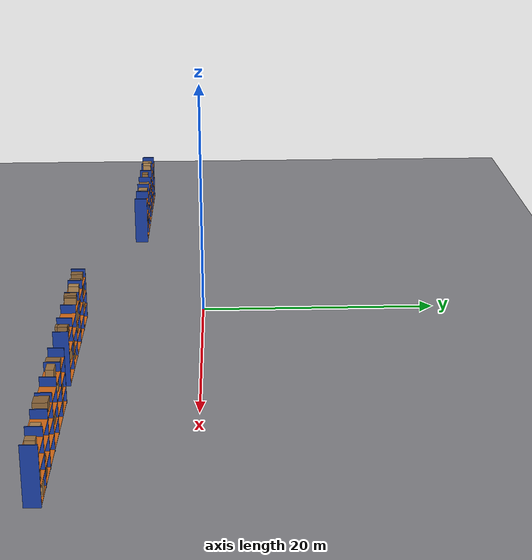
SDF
<sdf version="1.9">
 <world name="warehouse">
  <model name="ground_plane">
   <static>true</static>
   <link name="link">
    <collision name="collision">
     <geometry><plane><normal>0 0 1</normal><size>1 1</size></plane></geometry>
    </collision>
    <visual name="visual">
     <geometry><plane><normal>0 0 1</normal><size>200 100</size></plane></geometry>
     <material>
      <ambient>0.55 0.55 0.57 1</ambient>
      <diffuse>0.55 0.55 0.57 1</diffuse>
      <specular>0.1 0.1 0.1 1</specular>
     </material>
    </visual>
   </link>
  </model>
  <model name="rack6">
   <static>true</static>
   <link name="link">
    <collision name="up0_c">
     <pose>1.500 -10.500 2.250 0 0 0</pose>
     <geometry><box><size>0.080 1.200 4.500</size></box></geometry>
    </collision>
    <visual name="up0_v">
     <pose>1.500 -10.500 2.250 0 0 0</pose>
     <geometry><box><size>0.080 1.200 4.500</size></box></geometry>
     <material>
      <ambient>0.1 0.25 0.65 1</ambient>
      <diffuse>0.1 0.25 0.65 1</diffuse>
      <specular>0.1 0.1 0.1 1</specular>
     </material>
    </visual>
    <collision name="up1_c">
     <pose>4.200 -10.500 2.250 0 0 0</pose>
     <geometry><box><size>0.080 1.200 4.500</size></box></geometry>
    </collision>
    <visual name="up1_v">
     <pose>4.200 -10.500 2.250 0 0 0</pose>
     <geometry><box><size>0.080 1.200 4.500</size></box></geometry>
     <material>
      <ambient>0.1 0.25 0.65 1</ambient>
      <diffuse>0.1 0.25 0.65 1</diffuse>
      <specular>0.1 0.1 0.1 1</specular>
     </material>
    </visual>
    <collision name="up2_c">
     <pose>6.900 -10.500 2.250 0 0 0</pose>
     <geometry><box><size>0.080 1.200 4.500</size></box></geometry>
    </collision>
    <visual name="up2_v">
     <pose>6.900 -10.500 2.250 0 0 0</pose>
     <geometry><box><size>0.080 1.200 4.500</size></box></geometry>
     <material>
      <ambient>0.1 0.25 0.65 1</ambient>
      <diffuse>0.1 0.25 0.65 1</diffuse>
      <specular>0.1 0.1 0.1 1</specular>
     </material>
    </visual>
    <collision name="up3_c">
     <pose>9.600 -10.500 2.250 0 0 0</pose>
     <geometry><box><size>0.080 1.200 4.500</size></box></geometry>
    </collision>
    <visual name="up3_v">
     <pose>9.600 -10.500 2.250 0 0 0</pose>
     <geometry><box><size>0.080 1.200 4.500</size></box></geometry>
     <material>
      <ambient>0.1 0.25 0.65 1</ambient>
      <diffuse>0.1 0.25 0.65 1</diffuse>
      <specular>0.1 0.1 0.1 1</specular>
     </material>
    </visual>
    <collision name="up4_c">
     <pose>12.300 -10.500 2.250 0 0 0</pose>
     <geometry><box><size>0.080 1.200 4.500</size></box></geometry>
    </collision>
    <visual name="up4_v">
     <pose>12.300 -10.500 2.250 0 0 0</pose>
     <geometry><box><size>0.080 1.200 4.500</size></box></geometry>
     <material>
      <ambient>0.1 0.25 0.65 1</ambient>
      <diffuse>0.1 0.25 0.65 1</diffuse>
      <specular>0.1 0.1 0.1 1</specular>
     </material>
    </visual>
    <collision name="up5_c">
     <pose>15.000 -10.500 2.250 0 0 0</pose>
     <geometry><box><size>0.080 1.200 4.500</size></box></geometry>
    </collision>
    <visual name="up5_v">
     <pose>15.000 -10.500 2.250 0 0 0</pose>
     <geometry><box><size>0.080 1.200 4.500</size></box></geometry>
     <material>
      <ambient>0.1 0.25 0.65 1</ambient>
      <diffuse>0.1 0.25 0.65 1</diffuse>
      <specular>0.1 0.1 0.1 1</specular>
     </material>
    </visual>
    <collision name="sh0_c">
     <pose>8.250 -10.500 0.150 0 0 0</pose>
     <geometry><box><size>13.500 1.200 0.050</size></box></geometry>
    </collision>
    <visual name="sh0_v">
     <pose>8.250 -10.500 0.150 0 0 0</pose>
     <geometry><box><size>13.500 1.200 0.050</size></box></geometry>
     <material>
      <ambient>0.9 0.45 0.1 1</ambient>
      <diffuse>0.9 0.45 0.1 1</diffuse>
      <specular>0.1 0.1 0.1 1</specular>
     </material>
    </visual>
    <collision name="sh1_c">
     <pose>8.250 -10.500 1.350 0 0 0</pose>
     <geometry><box><size>13.500 1.200 0.050</size></box></geometry>
    </collision>
    <visual name="sh1_v">
     <pose>8.250 -10.500 1.350 0 0 0</pose>
     <geometry><box><size>13.500 1.200 0.050</size></box></geometry>
     <material>
      <ambient>0.9 0.45 0.1 1</ambient>
      <diffuse>0.9 0.45 0.1 1</diffuse>
      <specular>0.1 0.1 0.1 1</specular>
     </material>
    </visual>
    <collision name="sh2_c">
     <pose>8.250 -10.500 2.550 0 0 0</pose>
     <geometry><box><size>13.500 1.200 0.050</size></box></geometry>
    </collision>
    <visual name="sh2_v">
     <pose>8.250 -10.500 2.550 0 0 0</pose>
     <geometry><box><size>13.500 1.200 0.050</size></box></geometry>
     <material>
      <ambient>0.9 0.45 0.1 1</ambient>
      <diffuse>0.9 0.45 0.1 1</diffuse>
      <specular>0.1 0.1 0.1 1</specular>
     </material>
    </visual>
    <collision name="sh3_c">
     <pose>8.250 -10.500 3.750 0 0 0</pose>
     <geometry><box><size>13.500 1.200 0.050</size></box></geometry>
    </collision>
    <visual name="sh3_v">
     <pose>8.250 -10.500 3.750 0 0 0</pose>
     <geometry><box><size>13.500 1.200 0.050</size></box></geometry>
     <material>
      <ambient>0.9 0.45 0.1 1</ambient>
      <diffuse>0.9 0.45 0.1 1</diffuse>
      <specular>0.1 0.1 0.1 1</specular>
     </material>
    </visual>
    <collision name="c0_c">
     <pose>3.119 -10.521 0.472 0 0 0</pose>
     <geometry><box><size>0.906 0.644 0.595</size></box></geometry>
    </collision>
    <visual name="c0_v">
     <pose>3.119 -10.521 0.472 0 0 0</pose>
     <geometry><box><size>0.906 0.644 0.595</size></box></geometry>
     <material>
      <ambient>0.58 0.42 0.24 1</ambient>
      <diffuse>0.58 0.42 0.24 1</diffuse>
      <specular>0.1 0.1 0.1 1</specular>
     </material>
    </visual>
    <collision name="c1_c">
     <pose>2.631 -10.459 1.601 0 0 0</pose>
     <geometry><box><size>0.570 1.027 0.453</size></box></geometry>
    </collision>
    <visual name="c1_v">
     <pose>2.631 -10.459 1.601 0 0 0</pose>
     <geometry><box><size>0.570 1.027 0.453</size></box></geometry>
     <material>
      <ambient>0.65 0.48 0.28 1</ambient>
      <diffuse>0.65 0.48 0.28 1</diffuse>
      <specular>0.1 0.1 0.1 1</specular>
     </material>
    </visual>
    <collision name="c2_c">
     <pose>3.677 -10.496 1.761 0 0 0</pose>
     <geometry><box><size>0.600 0.729 0.772</size></box></geometry>
    </collision>
    <visual name="c2_v">
     <pose>3.677 -10.496 1.761 0 0 0</pose>
     <geometry><box><size>0.600 0.729 0.772</size></box></geometry>
     <material>
      <ambient>0.72 0.55 0.33 1</ambient>
      <diffuse>0.72 0.55 0.33 1</diffuse>
      <specular>0.1 0.1 0.1 1</specular>
     </material>
    </visual>
    <collision name="c3_c">
     <pose>2.244 -10.474 2.990 0 0 0</pose>
     <geometry><box><size>0.973 0.912 0.831</size></box></geometry>
    </collision>
    <visual name="c3_v">
     <pose>2.244 -10.474 2.990 0 0 0</pose>
     <geometry><box><size>0.973 0.912 0.831</size></box></geometry>
     <material>
      <ambient>0.58 0.42 0.24 1</ambient>
      <diffuse>0.58 0.42 0.24 1</diffuse>
      <specular>0.1 0.1 0.1 1</specular>
     </material>
    </visual>
    <collision name="c4_c">
     <pose>3.645 -10.540 4.050 0 0 0</pose>
     <geometry><box><size>0.534 0.913 0.550</size></box></geometry>
    </collision>
    <visual name="c4_v">
     <pose>3.645 -10.540 4.050 0 0 0</pose>
     <geometry><box><size>0.534 0.913 0.550</size></box></geometry>
     <material>
      <ambient>0.58 0.42 0.24 1</ambient>
      <diffuse>0.58 0.42 0.24 1</diffuse>
      <specular>0.1 0.1 0.1 1</specular>
     </material>
    </visual>
    <collision name="c5_c">
     <pose>2.171 -10.530 4.078 0 0 0</pose>
     <geometry><box><size>0.665 0.953 0.606</size></box></geometry>
    </collision>
    <visual name="c5_v">
     <pose>2.171 -10.530 4.078 0 0 0</pose>
     <geometry><box><size>0.665 0.953 0.606</size></box></geometry>
     <material>
      <ambient>0.58 0.42 0.24 1</ambient>
      <diffuse>0.58 0.42 0.24 1</diffuse>
      <specular>0.1 0.1 0.1 1</specular>
     </material>
    </visual>
    <collision name="c6_c">
     <pose>5.405 -10.522 0.412 0 0 0</pose>
     <geometry><box><size>0.820 0.904 0.474</size></box></geometry>
    </collision>
    <visual name="c6_v">
     <pose>5.405 -10.522 0.412 0 0 0</pose>
     <geometry><box><size>0.820 0.904 0.474</size></box></geometry>
     <material>
      <ambient>0.58 0.42 0.24 1</ambient>
      <diffuse>0.58 0.42 0.24 1</diffuse>
      <specular>0.1 0.1 0.1 1</specular>
     </material>
    </visual>
    <collision name="c7_c">
     <pose>5.738 -10.532 2.860 0 0 0</pose>
     <geometry><box><size>0.721 0.835 0.569</size></box></geometry>
    </collision>
    <visual name="c7_v">
     <pose>5.738 -10.532 2.860 0 0 0</pose>
     <geometry><box><size>0.721 0.835 0.569</size></box></geometry>
     <material>
      <ambient>0.58 0.42 0.24 1</ambient>
      <diffuse>0.58 0.42 0.24 1</diffuse>
      <specular>0.1 0.1 0.1 1</specular>
     </material>
    </visual>
    <collision name="c8_c">
     <pose>5.274 -10.481 2.790 0 0 0</pose>
     <geometry><box><size>0.917 0.867 0.429</size></box></geometry>
    </collision>
    <visual name="c8_v">
     <pose>5.274 -10.481 2.790 0 0 0</pose>
     <geometry><box><size>0.917 0.867 0.429</size></box></geometry>
     <material>
      <ambient>0.58 0.42 0.24 1</ambient>
      <diffuse>0.58 0.42 0.24 1</diffuse>
      <specular>0.1 0.1 0.1 1</specular>
     </material>
    </visual>
    <collision name="c9_c">
     <pose>4.876 -10.536 4.058 0 0 0</pose>
     <geometry><box><size>0.689 0.847 0.565</size></box></geometry>
    </collision>
    <visual name="c9_v">
     <pose>4.876 -10.536 4.058 0 0 0</pose>
     <geometry><box><size>0.689 0.847 0.565</size></box></geometry>
     <material>
      <ambient>0.72 0.55 0.33 1</ambient>
      <diffuse>0.72 0.55 0.33 1</diffuse>
      <specular>0.1 0.1 0.1 1</specular>
     </material>
    </visual>
    <collision name="c10_c">
     <pose>7.750 -10.493 1.632 0 0 0</pose>
     <geometry><box><size>0.838 0.942 0.513</size></box></geometry>
    </collision>
    <visual name="c10_v">
     <pose>7.750 -10.493 1.632 0 0 0</pose>
     <geometry><box><size>0.838 0.942 0.513</size></box></geometry>
     <material>
      <ambient>0.72 0.55 0.33 1</ambient>
      <diffuse>0.72 0.55 0.33 1</diffuse>
      <specular>0.1 0.1 0.1 1</specular>
     </material>
    </visual>
    <collision name="c11_c">
     <pose>7.820 -10.476 2.981 0 0 0</pose>
     <geometry><box><size>0.964 1.011 0.811</size></box></geometry>
    </collision>
    <visual name="c11_v">
     <pose>7.820 -10.476 2.981 0 0 0</pose>
     <geometry><box><size>0.964 1.011 0.811</size></box></geometry>
     <material>
      <ambient>0.72 0.55 0.33 1</ambient>
      <diffuse>0.72 0.55 0.33 1</diffuse>
      <specular>0.1 0.1 0.1 1</specular>
     </material>
    </visual>
    <collision name="c12_c">
     <pose>7.554 -10.515 4.070 0 0 0</pose>
     <geometry><box><size>0.661 0.959 0.590</size></box></geometry>
    </collision>
    <visual name="c12_v">
     <pose>7.554 -10.515 4.070 0 0 0</pose>
     <geometry><box><size>0.661 0.959 0.590</size></box></geometry>
     <material>
      <ambient>0.65 0.48 0.28 1</ambient>
      <diffuse>0.65 0.48 0.28 1</diffuse>
      <specular>0.1 0.1 0.1 1</specular>
     </material>
    </visual>
    <collision name="c13_c">
     <pose>7.401 -10.542 4.145 0 0 0</pose>
     <geometry><box><size>0.650 0.985 0.741</size></box></geometry>
    </collision>
    <visual name="c13_v">
     <pose>7.401 -10.542 4.145 0 0 0</pose>
     <geometry><box><size>0.650 0.985 0.741</size></box></geometry>
     <material>
      <ambient>0.58 0.42 0.24 1</ambient>
      <diffuse>0.58 0.42 0.24 1</diffuse>
      <specular>0.1 0.1 0.1 1</specular>
     </material>
    </visual>
    <collision name="c14_c">
     <pose>10.102 -10.536 0.387 0 0 0</pose>
     <geometry><box><size>0.690 0.735 0.425</size></box></geometry>
    </collision>
    <visual name="c14_v">
     <pose>10.102 -10.536 0.387 0 0 0</pose>
     <geometry><box><size>0.690 0.735 0.425</size></box></geometry>
     <material>
      <ambient>0.72 0.55 0.33 1</ambient>
      <diffuse>0.72 0.55 0.33 1</diffuse>
      <specular>0.1 0.1 0.1 1</specular>
     </material>
    </visual>
    <collision name="c15_c">
     <pose>10.228 -10.517 0.548 0 0 0</pose>
     <geometry><box><size>0.723 0.960 0.746</size></box></geometry>
    </collision>
    <visual name="c15_v">
     <pose>10.228 -10.517 0.548 0 0 0</pose>
     <geometry><box><size>0.723 0.960 0.746</size></box></geometry>
     <material>
      <ambient>0.65 0.48 0.28 1</ambient>
      <diffuse>0.65 0.48 0.28 1</diffuse>
      <specular>0.1 0.1 0.1 1</specular>
     </material>
    </visual>
    <collision name="c16_c">
     <pose>11.365 -10.478 1.806 0 0 0</pose>
     <geometry><box><size>1.075 0.656 0.862</size></box></geometry>
    </collision>
    <visual name="c16_v">
     <pose>11.365 -10.478 1.806 0 0 0</pose>
     <geometry><box><size>1.075 0.656 0.862</size></box></geometry>
     <material>
      <ambient>0.65 0.48 0.28 1</ambient>
      <diffuse>0.65 0.48 0.28 1</diffuse>
      <specular>0.1 0.1 0.1 1</specular>
     </material>
    </visual>
    <collision name="c17_c">
     <pose>11.243 -10.488 1.676 0 0 0</pose>
     <geometry><box><size>0.864 1.035 0.603</size></box></geometry>
    </collision>
    <visual name="c17_v">
     <pose>11.243 -10.488 1.676 0 0 0</pose>
     <geometry><box><size>0.864 1.035 0.603</size></box></geometry>
     <material>
      <ambient>0.58 0.42 0.24 1</ambient>
      <diffuse>0.58 0.42 0.24 1</diffuse>
      <specular>0.1 0.1 0.1 1</specular>
     </material>
    </visual>
    <collision name="c18_c">
     <pose>11.173 -10.495 3.000 0 0 0</pose>
     <geometry><box><size>0.821 0.797 0.849</size></box></geometry>
    </collision>
    <visual name="c18_v">
     <pose>11.173 -10.495 3.000 0 0 0</pose>
     <geometry><box><size>0.821 0.797 0.849</size></box></geometry>
     <material>
      <ambient>0.65 0.48 0.28 1</ambient>
      <diffuse>0.65 0.48 0.28 1</diffuse>
      <specular>0.1 0.1 0.1 1</specular>
     </material>
    </visual>
    <collision name="c19_c">
     <pose>11.601 -10.523 2.835 0 0 0</pose>
     <geometry><box><size>0.860 0.655 0.520</size></box></geometry>
    </collision>
    <visual name="c19_v">
     <pose>11.601 -10.523 2.835 0 0 0</pose>
     <geometry><box><size>0.860 0.655 0.520</size></box></geometry>
     <material>
      <ambient>0.65 0.48 0.28 1</ambient>
      <diffuse>0.65 0.48 0.28 1</diffuse>
      <specular>0.1 0.1 0.1 1</specular>
     </material>
    </visual>
    <collision name="c20_c">
     <pose>12.821 -10.452 1.761 0 0 0</pose>
     <geometry><box><size>0.576 0.954 0.772</size></box></geometry>
    </collision>
    <visual name="c20_v">
     <pose>12.821 -10.452 1.761 0 0 0</pose>
     <geometry><box><size>0.576 0.954 0.772</size></box></geometry>
     <material>
      <ambient>0.72 0.55 0.33 1</ambient>
      <diffuse>0.72 0.55 0.33 1</diffuse>
      <specular>0.1 0.1 0.1 1</specular>
     </material>
    </visual>
    <collision name="c21_c">
     <pose>13.959 -10.547 1.756 0 0 0</pose>
     <geometry><box><size>0.827 1.022 0.762</size></box></geometry>
    </collision>
    <visual name="c21_v">
     <pose>13.959 -10.547 1.756 0 0 0</pose>
     <geometry><box><size>0.827 1.022 0.762</size></box></geometry>
     <material>
      <ambient>0.72 0.55 0.33 1</ambient>
      <diffuse>0.72 0.55 0.33 1</diffuse>
      <specular>0.1 0.1 0.1 1</specular>
     </material>
    </visual>
    <collision name="c22_c">
     <pose>14.373 -10.528 2.810 0 0 0</pose>
     <geometry><box><size>0.593 1.057 0.471</size></box></geometry>
    </collision>
    <visual name="c22_v">
     <pose>14.373 -10.528 2.810 0 0 0</pose>
     <geometry><box><size>0.593 1.057 0.471</size></box></geometry>
     <material>
      <ambient>0.72 0.55 0.33 1</ambient>
      <diffuse>0.72 0.55 0.33 1</diffuse>
      <specular>0.1 0.1 0.1 1</specular>
     </material>
    </visual>
    <collision name="c23_c">
     <pose>13.535 -10.538 4.070 0 0 0</pose>
     <geometry><box><size>0.596 1.025 0.591</size></box></geometry>
    </collision>
    <visual name="c23_v">
     <pose>13.535 -10.538 4.070 0 0 0</pose>
     <geometry><box><size>0.596 1.025 0.591</size></box></geometry>
     <material>
      <ambient>0.58 0.42 0.24 1</ambient>
      <diffuse>0.58 0.42 0.24 1</diffuse>
      <specular>0.1 0.1 0.1 1</specular>
     </material>
    </visual>
    <collision name="c24_c">
     <pose>13.916 -10.455 4.147 0 0 0</pose>
     <geometry><box><size>0.587 0.748 0.743</size></box></geometry>
    </collision>
    <visual name="c24_v">
     <pose>13.916 -10.455 4.147 0 0 0</pose>
     <geometry><box><size>0.587 0.748 0.743</size></box></geometry>
     <material>
      <ambient>0.58 0.42 0.24 1</ambient>
      <diffuse>0.58 0.42 0.24 1</diffuse>
      <specular>0.1 0.1 0.1 1</specular>
     </material>
    </visual>
   </link>
  </model>
  <model name="rack7">
   <static>true</static>
   <link name="link">
    <collision name="up0_c">
     <pose>18.000 -10.500 2.250 0 0 0</pose>
     <geometry><box><size>0.080 1.200 4.500</size></box></geometry>
    </collision>
    <visual name="up0_v">
     <pose>18.000 -10.500 2.250 0 0 0</pose>
     <geometry><box><size>0.080 1.200 4.500</size></box></geometry>
     <material>
      <ambient>0.1 0.25 0.65 1</ambient>
      <diffuse>0.1 0.25 0.65 1</diffuse>
      <specular>0.1 0.1 0.1 1</specular>
     </material>
    </visual>
    <collision name="up1_c">
     <pose>20.500 -10.500 2.250 0 0 0</pose>
     <geometry><box><size>0.080 1.200 4.500</size></box></geometry>
    </collision>
    <visual name="up1_v">
     <pose>20.500 -10.500 2.250 0 0 0</pose>
     <geometry><box><size>0.080 1.200 4.500</size></box></geometry>
     <material>
      <ambient>0.1 0.25 0.65 1</ambient>
      <diffuse>0.1 0.25 0.65 1</diffuse>
      <specular>0.1 0.1 0.1 1</specular>
     </material>
    </visual>
    <collision name="up2_c">
     <pose>23.000 -10.500 2.250 0 0 0</pose>
     <geometry><box><size>0.080 1.200 4.500</size></box></geometry>
    </collision>
    <visual name="up2_v">
     <pose>23.000 -10.500 2.250 0 0 0</pose>
     <geometry><box><size>0.080 1.200 4.500</size></box></geometry>
     <material>
      <ambient>0.1 0.25 0.65 1</ambient>
      <diffuse>0.1 0.25 0.65 1</diffuse>
      <specular>0.1 0.1 0.1 1</specular>
     </material>
    </visual>
    <collision name="up3_c">
     <pose>25.500 -10.500 2.250 0 0 0</pose>
     <geometry><box><size>0.080 1.200 4.500</size></box></geometry>
    </collision>
    <visual name="up3_v">
     <pose>25.500 -10.500 2.250 0 0 0</pose>
     <geometry><box><size>0.080 1.200 4.500</size></box></geometry>
     <material>
      <ambient>0.1 0.25 0.65 1</ambient>
      <diffuse>0.1 0.25 0.65 1</diffuse>
      <specular>0.1 0.1 0.1 1</specular>
     </material>
    </visual>
    <collision name="up4_c">
     <pose>28.000 -10.500 2.250 0 0 0</pose>
     <geometry><box><size>0.080 1.200 4.500</size></box></geometry>
    </collision>
    <visual name="up4_v">
     <pose>28.000 -10.500 2.250 0 0 0</pose>
     <geometry><box><size>0.080 1.200 4.500</size></box></geometry>
     <material>
      <ambient>0.1 0.25 0.65 1</ambient>
      <diffuse>0.1 0.25 0.65 1</diffuse>
      <specular>0.1 0.1 0.1 1</specular>
     </material>
    </visual>
    <collision name="up5_c">
     <pose>30.500 -10.500 2.250 0 0 0</pose>
     <geometry><box><size>0.080 1.200 4.500</size></box></geometry>
    </collision>
    <visual name="up5_v">
     <pose>30.500 -10.500 2.250 0 0 0</pose>
     <geometry><box><size>0.080 1.200 4.500</size></box></geometry>
     <material>
      <ambient>0.1 0.25 0.65 1</ambient>
      <diffuse>0.1 0.25 0.65 1</diffuse>
      <specular>0.1 0.1 0.1 1</specular>
     </material>
    </visual>
    <collision name="up6_c">
     <pose>33.000 -10.500 2.250 0 0 0</pose>
     <geometry><box><size>0.080 1.200 4.500</size></box></geometry>
    </collision>
    <visual name="up6_v">
     <pose>33.000 -10.500 2.250 0 0 0</pose>
     <geometry><box><size>0.080 1.200 4.500</size></box></geometry>
     <material>
      <ambient>0.1 0.25 0.65 1</ambient>
      <diffuse>0.1 0.25 0.65 1</diffuse>
      <specular>0.1 0.1 0.1 1</specular>
     </material>
    </visual>
    <collision name="sh0_c">
     <pose>25.500 -10.500 0.150 0 0 0</pose>
     <geometry><box><size>15.000 1.200 0.050</size></box></geometry>
    </collision>
    <visual name="sh0_v">
     <pose>25.500 -10.500 0.150 0 0 0</pose>
     <geometry><box><size>15.000 1.200 0.050</size></box></geometry>
     <material>
      <ambient>0.9 0.45 0.1 1</ambient>
      <diffuse>0.9 0.45 0.1 1</diffuse>
      <specular>0.1 0.1 0.1 1</specular>
     </material>
    </visual>
    <collision name="sh1_c">
     <pose>25.500 -10.500 1.350 0 0 0</pose>
     <geometry><box><size>15.000 1.200 0.050</size></box></geometry>
    </collision>
    <visual name="sh1_v">
     <pose>25.500 -10.500 1.350 0 0 0</pose>
     <geometry><box><size>15.000 1.200 0.050</size></box></geometry>
     <material>
      <ambient>0.9 0.45 0.1 1</ambient>
      <diffuse>0.9 0.45 0.1 1</diffuse>
      <specular>0.1 0.1 0.1 1</specular>
     </material>
    </visual>
    <collision name="sh2_c">
     <pose>25.500 -10.500 2.550 0 0 0</pose>
     <geometry><box><size>15.000 1.200 0.050</size></box></geometry>
    </collision>
    <visual name="sh2_v">
     <pose>25.500 -10.500 2.550 0 0 0</pose>
     <geometry><box><size>15.000 1.200 0.050</size></box></geometry>
     <material>
      <ambient>0.9 0.45 0.1 1</ambient>
      <diffuse>0.9 0.45 0.1 1</diffuse>
      <specular>0.1 0.1 0.1 1</specular>
     </material>
    </visual>
    <collision name="sh3_c">
     <pose>25.500 -10.500 3.750 0 0 0</pose>
     <geometry><box><size>15.000 1.200 0.050</size></box></geometry>
    </collision>
    <visual name="sh3_v">
     <pose>25.500 -10.500 3.750 0 0 0</pose>
     <geometry><box><size>15.000 1.200 0.050</size></box></geometry>
     <material>
      <ambient>0.9 0.45 0.1 1</ambient>
      <diffuse>0.9 0.45 0.1 1</diffuse>
      <specular>0.1 0.1 0.1 1</specular>
     </material>
    </visual>
    <collision name="c0_c">
     <pose>19.186 -10.472 0.596 0 0 0</pose>
     <geometry><box><size>0.728 0.881 0.841</size></box></geometry>
    </collision>
    <visual name="c0_v">
     <pose>19.186 -10.472 0.596 0 0 0</pose>
     <geometry><box><size>0.728 0.881 0.841</size></box></geometry>
     <material>
      <ambient>0.58 0.42 0.24 1</ambient>
      <diffuse>0.58 0.42 0.24 1</diffuse>
      <specular>0.1 0.1 0.1 1</specular>
     </material>
    </visual>
    <collision name="c1_c">
     <pose>18.696 -10.503 1.726 0 0 0</pose>
     <geometry><box><size>1.060 0.804 0.703</size></box></geometry>
    </collision>
    <visual name="c1_v">
     <pose>18.696 -10.503 1.726 0 0 0</pose>
     <geometry><box><size>1.060 0.804 0.703</size></box></geometry>
     <material>
      <ambient>0.65 0.48 0.28 1</ambient>
      <diffuse>0.65 0.48 0.28 1</diffuse>
      <specular>0.1 0.1 0.1 1</specular>
     </material>
    </visual>
    <collision name="c2_c">
     <pose>19.719 -10.491 1.778 0 0 0</pose>
     <geometry><box><size>0.888 0.949 0.806</size></box></geometry>
    </collision>
    <visual name="c2_v">
     <pose>19.719 -10.491 1.778 0 0 0</pose>
     <geometry><box><size>0.888 0.949 0.806</size></box></geometry>
     <material>
      <ambient>0.58 0.42 0.24 1</ambient>
      <diffuse>0.58 0.42 0.24 1</diffuse>
      <specular>0.1 0.1 0.1 1</specular>
     </material>
    </visual>
    <collision name="c3_c">
     <pose>19.939 -10.514 2.917 0 0 0</pose>
     <geometry><box><size>0.831 0.991 0.684</size></box></geometry>
    </collision>
    <visual name="c3_v">
     <pose>19.939 -10.514 2.917 0 0 0</pose>
     <geometry><box><size>0.831 0.991 0.684</size></box></geometry>
     <material>
      <ambient>0.72 0.55 0.33 1</ambient>
      <diffuse>0.72 0.55 0.33 1</diffuse>
      <specular>0.1 0.1 0.1 1</specular>
     </material>
    </visual>
    <collision name="c4_c">
     <pose>18.910 -10.494 2.977 0 0 0</pose>
     <geometry><box><size>0.992 0.723 0.804</size></box></geometry>
    </collision>
    <visual name="c4_v">
     <pose>18.910 -10.494 2.977 0 0 0</pose>
     <geometry><box><size>0.992 0.723 0.804</size></box></geometry>
     <material>
      <ambient>0.72 0.55 0.33 1</ambient>
      <diffuse>0.72 0.55 0.33 1</diffuse>
      <specular>0.1 0.1 0.1 1</specular>
     </material>
    </visual>
    <collision name="c5_c">
     <pose>19.757 -10.515 4.053 0 0 0</pose>
     <geometry><box><size>0.966 1.058 0.557</size></box></geometry>
    </collision>
    <visual name="c5_v">
     <pose>19.757 -10.515 4.053 0 0 0</pose>
     <geometry><box><size>0.966 1.058 0.557</size></box></geometry>
     <material>
      <ambient>0.58 0.42 0.24 1</ambient>
      <diffuse>0.58 0.42 0.24 1</diffuse>
      <specular>0.1 0.1 0.1 1</specular>
     </material>
    </visual>
    <collision name="c6_c">
     <pose>22.113 -10.516 0.465 0 0 0</pose>
     <geometry><box><size>0.870 0.807 0.579</size></box></geometry>
    </collision>
    <visual name="c6_v">
     <pose>22.113 -10.516 0.465 0 0 0</pose>
     <geometry><box><size>0.870 0.807 0.579</size></box></geometry>
     <material>
      <ambient>0.58 0.42 0.24 1</ambient>
      <diffuse>0.58 0.42 0.24 1</diffuse>
      <specular>0.1 0.1 0.1 1</specular>
     </material>
    </visual>
    <collision name="c7_c">
     <pose>21.171 -10.486 2.998 0 0 0</pose>
     <geometry><box><size>0.534 0.937 0.846</size></box></geometry>
    </collision>
    <visual name="c7_v">
     <pose>21.171 -10.486 2.998 0 0 0</pose>
     <geometry><box><size>0.534 0.937 0.846</size></box></geometry>
     <material>
      <ambient>0.72 0.55 0.33 1</ambient>
      <diffuse>0.72 0.55 0.33 1</diffuse>
      <specular>0.1 0.1 0.1 1</specular>
     </material>
    </visual>
    <collision name="c8_c">
     <pose>21.608 -10.467 4.199 0 0 0</pose>
     <geometry><box><size>1.085 0.611 0.849</size></box></geometry>
    </collision>
    <visual name="c8_v">
     <pose>21.608 -10.467 4.199 0 0 0</pose>
     <geometry><box><size>1.085 0.611 0.849</size></box></geometry>
     <material>
      <ambient>0.65 0.48 0.28 1</ambient>
      <diffuse>0.65 0.48 0.28 1</diffuse>
      <specular>0.1 0.1 0.1 1</specular>
     </material>
    </visual>
    <collision name="c9_c">
     <pose>24.523 -10.472 0.617 0 0 0</pose>
     <geometry><box><size>0.560 0.768 0.885</size></box></geometry>
    </collision>
    <visual name="c9_v">
     <pose>24.523 -10.472 0.617 0 0 0</pose>
     <geometry><box><size>0.560 0.768 0.885</size></box></geometry>
     <material>
      <ambient>0.72 0.55 0.33 1</ambient>
      <diffuse>0.72 0.55 0.33 1</diffuse>
      <specular>0.1 0.1 0.1 1</specular>
     </material>
    </visual>
    <collision name="c10_c">
     <pose>23.789 -10.506 1.756 0 0 0</pose>
     <geometry><box><size>0.796 0.987 0.762</size></box></geometry>
    </collision>
    <visual name="c10_v">
     <pose>23.789 -10.506 1.756 0 0 0</pose>
     <geometry><box><size>0.796 0.987 0.762</size></box></geometry>
     <material>
      <ambient>0.58 0.42 0.24 1</ambient>
      <diffuse>0.58 0.42 0.24 1</diffuse>
      <specular>0.1 0.1 0.1 1</specular>
     </material>
    </visual>
    <collision name="c11_c">
     <pose>23.602 -10.549 1.642 0 0 0</pose>
     <geometry><box><size>0.572 0.844 0.533</size></box></geometry>
    </collision>
    <visual name="c11_v">
     <pose>23.602 -10.549 1.642 0 0 0</pose>
     <geometry><box><size>0.572 0.844 0.533</size></box></geometry>
     <material>
      <ambient>0.72 0.55 0.33 1</ambient>
      <diffuse>0.72 0.55 0.33 1</diffuse>
      <specular>0.1 0.1 0.1 1</specular>
     </material>
    </visual>
    <collision name="c12_c">
     <pose>26.257 -10.525 2.906 0 0 0</pose>
     <geometry><box><size>1.051 0.677 0.662</size></box></geometry>
    </collision>
    <visual name="c12_v">
     <pose>26.257 -10.525 2.906 0 0 0</pose>
     <geometry><box><size>1.051 0.677 0.662</size></box></geometry>
     <material>
      <ambient>0.72 0.55 0.33 1</ambient>
      <diffuse>0.72 0.55 0.33 1</diffuse>
      <specular>0.1 0.1 0.1 1</specular>
     </material>
    </visual>
    <collision name="c13_c">
     <pose>27.395 -10.496 2.959 0 0 0</pose>
     <geometry><box><size>0.738 0.917 0.768</size></box></geometry>
    </collision>
    <visual name="c13_v">
     <pose>27.395 -10.496 2.959 0 0 0</pose>
     <geometry><box><size>0.738 0.917 0.768</size></box></geometry>
     <material>
      <ambient>0.72 0.55 0.33 1</ambient>
      <diffuse>0.72 0.55 0.33 1</diffuse>
      <specular>0.1 0.1 0.1 1</specular>
     </material>
    </visual>
    <collision name="c14_c">
     <pose>26.559 -10.526 4.141 0 0 0</pose>
     <geometry><box><size>1.089 1.054 0.731</size></box></geometry>
    </collision>
    <visual name="c14_v">
     <pose>26.559 -10.526 4.141 0 0 0</pose>
     <geometry><box><size>1.089 1.054 0.731</size></box></geometry>
     <material>
      <ambient>0.58 0.42 0.24 1</ambient>
      <diffuse>0.58 0.42 0.24 1</diffuse>
      <specular>0.1 0.1 0.1 1</specular>
     </material>
    </visual>
    <collision name="c15_c">
     <pose>29.127 -10.471 0.503 0 0 0</pose>
     <geometry><box><size>0.605 0.893 0.657</size></box></geometry>
    </collision>
    <visual name="c15_v">
     <pose>29.127 -10.471 0.503 0 0 0</pose>
     <geometry><box><size>0.605 0.893 0.657</size></box></geometry>
     <material>
      <ambient>0.58 0.42 0.24 1</ambient>
      <diffuse>0.58 0.42 0.24 1</diffuse>
      <specular>0.1 0.1 0.1 1</specular>
     </material>
    </visual>
    <collision name="c16_c">
     <pose>29.488 -10.511 1.605 0 0 0</pose>
     <geometry><box><size>0.649 0.990 0.460</size></box></geometry>
    </collision>
    <visual name="c16_v">
     <pose>29.488 -10.511 1.605 0 0 0</pose>
     <geometry><box><size>0.649 0.990 0.460</size></box></geometry>
     <material>
      <ambient>0.58 0.42 0.24 1</ambient>
      <diffuse>0.58 0.42 0.24 1</diffuse>
      <specular>0.1 0.1 0.1 1</specular>
     </material>
    </visual>
    <collision name="c17_c">
     <pose>29.802 -10.519 3.978 0 0 0</pose>
     <geometry><box><size>1.087 0.720 0.406</size></box></geometry>
    </collision>
    <visual name="c17_v">
     <pose>29.802 -10.519 3.978 0 0 0</pose>
     <geometry><box><size>1.087 0.720 0.406</size></box></geometry>
     <material>
      <ambient>0.72 0.55 0.33 1</ambient>
      <diffuse>0.72 0.55 0.33 1</diffuse>
      <specular>0.1 0.1 0.1 1</specular>
     </material>
    </visual>
    <collision name="c18_c">
     <pose>31.488 -10.497 0.552 0 0 0</pose>
     <geometry><box><size>0.857 1.093 0.754</size></box></geometry>
    </collision>
    <visual name="c18_v">
     <pose>31.488 -10.497 0.552 0 0 0</pose>
     <geometry><box><size>0.857 1.093 0.754</size></box></geometry>
     <material>
      <ambient>0.72 0.55 0.33 1</ambient>
      <diffuse>0.72 0.55 0.33 1</diffuse>
      <specular>0.1 0.1 0.1 1</specular>
     </material>
    </visual>
    <collision name="c19_c">
     <pose>32.203 -10.500 1.750 0 0 0</pose>
     <geometry><box><size>0.832 0.949 0.749</size></box></geometry>
    </collision>
    <visual name="c19_v">
     <pose>32.203 -10.500 1.750 0 0 0</pose>
     <geometry><box><size>0.832 0.949 0.749</size></box></geometry>
     <material>
      <ambient>0.72 0.55 0.33 1</ambient>
      <diffuse>0.72 0.55 0.33 1</diffuse>
      <specular>0.1 0.1 0.1 1</specular>
     </material>
    </visual>
    <collision name="c20_c">
     <pose>32.296 -10.472 1.717 0 0 0</pose>
     <geometry><box><size>0.716 0.676 0.683</size></box></geometry>
    </collision>
    <visual name="c20_v">
     <pose>32.296 -10.472 1.717 0 0 0</pose>
     <geometry><box><size>0.716 0.676 0.683</size></box></geometry>
     <material>
      <ambient>0.58 0.42 0.24 1</ambient>
      <diffuse>0.58 0.42 0.24 1</diffuse>
      <specular>0.1 0.1 0.1 1</specular>
     </material>
    </visual>
    <collision name="c21_c">
     <pose>31.858 -10.549 4.071 0 0 0</pose>
     <geometry><box><size>0.655 0.726 0.592</size></box></geometry>
    </collision>
    <visual name="c21_v">
     <pose>31.858 -10.549 4.071 0 0 0</pose>
     <geometry><box><size>0.655 0.726 0.592</size></box></geometry>
     <material>
      <ambient>0.65 0.48 0.28 1</ambient>
      <diffuse>0.65 0.48 0.28 1</diffuse>
      <specular>0.1 0.1 0.1 1</specular>
     </material>
    </visual>
   </link>
  </model>
  <model name="rack8">
   <static>true</static>
   <link name="link">
    <collision name="up0_c">
     <pose>-33.000 -6.300 2.250 0 0 0</pose>
     <geometry><box><size>0.080 1.200 4.500</size></box></geometry>
    </collision>
    <visual name="up0_v">
     <pose>-33.000 -6.300 2.250 0 0 0</pose>
     <geometry><box><size>0.080 1.200 4.500</size></box></geometry>
     <material>
      <ambient>0.1 0.25 0.65 1</ambient>
      <diffuse>0.1 0.25 0.65 1</diffuse>
      <specular>0.1 0.1 0.1 1</specular>
     </material>
    </visual>
    <collision name="up1_c">
     <pose>-30.500 -6.300 2.250 0 0 0</pose>
     <geometry><box><size>0.080 1.200 4.500</size></box></geometry>
    </collision>
    <visual name="up1_v">
     <pose>-30.500 -6.300 2.250 0 0 0</pose>
     <geometry><box><size>0.080 1.200 4.500</size></box></geometry>
     <material>
      <ambient>0.1 0.25 0.65 1</ambient>
      <diffuse>0.1 0.25 0.65 1</diffuse>
      <specular>0.1 0.1 0.1 1</specular>
     </material>
    </visual>
    <collision name="up2_c">
     <pose>-28.000 -6.300 2.250 0 0 0</pose>
     <geometry><box><size>0.080 1.200 4.500</size></box></geometry>
    </collision>
    <visual name="up2_v">
     <pose>-28.000 -6.300 2.250 0 0 0</pose>
     <geometry><box><size>0.080 1.200 4.500</size></box></geometry>
     <material>
      <ambient>0.1 0.25 0.65 1</ambient>
      <diffuse>0.1 0.25 0.65 1</diffuse>
      <specular>0.1 0.1 0.1 1</specular>
     </material>
    </visual>
    <collision name="up3_c">
     <pose>-25.500 -6.300 2.250 0 0 0</pose>
     <geometry><box><size>0.080 1.200 4.500</size></box></geometry>
    </collision>
    <visual name="up3_v">
     <pose>-25.500 -6.300 2.250 0 0 0</pose>
     <geometry><box><size>0.080 1.200 4.500</size></box></geometry>
     <material>
      <ambient>0.1 0.25 0.65 1</ambient>
      <diffuse>0.1 0.25 0.65 1</diffuse>
      <specular>0.1 0.1 0.1 1</specular>
     </material>
    </visual>
    <collision name="up4_c">
     <pose>-23.000 -6.300 2.250 0 0 0</pose>
     <geometry><box><size>0.080 1.200 4.500</size></box></geometry>
    </collision>
    <visual name="up4_v">
     <pose>-23.000 -6.300 2.250 0 0 0</pose>
     <geometry><box><size>0.080 1.200 4.500</size></box></geometry>
     <material>
      <ambient>0.1 0.25 0.65 1</ambient>
      <diffuse>0.1 0.25 0.65 1</diffuse>
      <specular>0.1 0.1 0.1 1</specular>
     </material>
    </visual>
    <collision name="up5_c">
     <pose>-20.500 -6.300 2.250 0 0 0</pose>
     <geometry><box><size>0.080 1.200 4.500</size></box></geometry>
    </collision>
    <visual name="up5_v">
     <pose>-20.500 -6.300 2.250 0 0 0</pose>
     <geometry><box><size>0.080 1.200 4.500</size></box></geometry>
     <material>
      <ambient>0.1 0.25 0.65 1</ambient>
      <diffuse>0.1 0.25 0.65 1</diffuse>
      <specular>0.1 0.1 0.1 1</specular>
     </material>
    </visual>
    <collision name="up6_c">
     <pose>-18.000 -6.300 2.250 0 0 0</pose>
     <geometry><box><size>0.080 1.200 4.500</size></box></geometry>
    </collision>
    <visual name="up6_v">
     <pose>-18.000 -6.300 2.250 0 0 0</pose>
     <geometry><box><size>0.080 1.200 4.500</size></box></geometry>
     <material>
      <ambient>0.1 0.25 0.65 1</ambient>
      <diffuse>0.1 0.25 0.65 1</diffuse>
      <specular>0.1 0.1 0.1 1</specular>
     </material>
    </visual>
    <collision name="sh0_c">
     <pose>-25.500 -6.300 0.150 0 0 0</pose>
     <geometry><box><size>15.000 1.200 0.050</size></box></geometry>
    </collision>
    <visual name="sh0_v">
     <pose>-25.500 -6.300 0.150 0 0 0</pose>
     <geometry><box><size>15.000 1.200 0.050</size></box></geometry>
     <material>
      <ambient>0.9 0.45 0.1 1</ambient>
      <diffuse>0.9 0.45 0.1 1</diffuse>
      <specular>0.1 0.1 0.1 1</specular>
     </material>
    </visual>
    <collision name="sh1_c">
     <pose>-25.500 -6.300 1.350 0 0 0</pose>
     <geometry><box><size>15.000 1.200 0.050</size></box></geometry>
    </collision>
    <visual name="sh1_v">
     <pose>-25.500 -6.300 1.350 0 0 0</pose>
     <geometry><box><size>15.000 1.200 0.050</size></box></geometry>
     <material>
      <ambient>0.9 0.45 0.1 1</ambient>
      <diffuse>0.9 0.45 0.1 1</diffuse>
      <specular>0.1 0.1 0.1 1</specular>
     </material>
    </visual>
    <collision name="sh2_c">
     <pose>-25.500 -6.300 2.550 0 0 0</pose>
     <geometry><box><size>15.000 1.200 0.050</size></box></geometry>
    </collision>
    <visual name="sh2_v">
     <pose>-25.500 -6.300 2.550 0 0 0</pose>
     <geometry><box><size>15.000 1.200 0.050</size></box></geometry>
     <material>
      <ambient>0.9 0.45 0.1 1</ambient>
      <diffuse>0.9 0.45 0.1 1</diffuse>
      <specular>0.1 0.1 0.1 1</specular>
     </material>
    </visual>
    <collision name="sh3_c">
     <pose>-25.500 -6.300 3.750 0 0 0</pose>
     <geometry><box><size>15.000 1.200 0.050</size></box></geometry>
    </collision>
    <visual name="sh3_v">
     <pose>-25.500 -6.300 3.750 0 0 0</pose>
     <geometry><box><size>15.000 1.200 0.050</size></box></geometry>
     <material>
      <ambient>0.9 0.45 0.1 1</ambient>
      <diffuse>0.9 0.45 0.1 1</diffuse>
      <specular>0.1 0.1 0.1 1</specular>
     </material>
    </visual>
    <collision name="c0_c">
     <pose>-32.257 -6.307 0.509 0 0 0</pose>
     <geometry><box><size>0.618 1.001 0.669</size></box></geometry>
    </collision>
    <visual name="c0_v">
     <pose>-32.257 -6.307 0.509 0 0 0</pose>
     <geometry><box><size>0.618 1.001 0.669</size></box></geometry>
     <material>
      <ambient>0.65 0.48 0.28 1</ambient>
      <diffuse>0.65 0.48 0.28 1</diffuse>
      <specular>0.1 0.1 0.1 1</specular>
     </material>
    </visual>
    <collision name="c1_c">
     <pose>-32.412 -6.271 1.731 0 0 0</pose>
     <geometry><box><size>0.735 0.698 0.713</size></box></geometry>
    </collision>
    <visual name="c1_v">
     <pose>-32.412 -6.271 1.731 0 0 0</pose>
     <geometry><box><size>0.735 0.698 0.713</size></box></geometry>
     <material>
      <ambient>0.65 0.48 0.28 1</ambient>
      <diffuse>0.65 0.48 0.28 1</diffuse>
      <specular>0.1 0.1 0.1 1</specular>
     </material>
    </visual>
    <collision name="c2_c">
     <pose>-32.396 -6.290 1.679 0 0 0</pose>
     <geometry><box><size>0.518 0.803 0.609</size></box></geometry>
    </collision>
    <visual name="c2_v">
     <pose>-32.396 -6.290 1.679 0 0 0</pose>
     <geometry><box><size>0.518 0.803 0.609</size></box></geometry>
     <material>
      <ambient>0.58 0.42 0.24 1</ambient>
      <diffuse>0.58 0.42 0.24 1</diffuse>
      <specular>0.1 0.1 0.1 1</specular>
     </material>
    </visual>
    <collision name="c3_c">
     <pose>-32.120 -6.278 2.810 0 0 0</pose>
     <geometry><box><size>1.056 1.025 0.470</size></box></geometry>
    </collision>
    <visual name="c3_v">
     <pose>-32.120 -6.278 2.810 0 0 0</pose>
     <geometry><box><size>1.056 1.025 0.470</size></box></geometry>
     <material>
      <ambient>0.72 0.55 0.33 1</ambient>
      <diffuse>0.72 0.55 0.33 1</diffuse>
      <specular>0.1 0.1 0.1 1</specular>
     </material>
    </visual>
    <collision name="c4_c">
     <pose>-31.691 -6.341 4.062 0 0 0</pose>
     <geometry><box><size>0.635 0.955 0.574</size></box></geometry>
    </collision>
    <visual name="c4_v">
     <pose>-31.691 -6.341 4.062 0 0 0</pose>
     <geometry><box><size>0.635 0.955 0.574</size></box></geometry>
     <material>
      <ambient>0.72 0.55 0.33 1</ambient>
      <diffuse>0.72 0.55 0.33 1</diffuse>
      <specular>0.1 0.1 0.1 1</specular>
     </material>
    </visual>
    <collision name="c5_c">
     <pose>-29.418 -6.306 1.601 0 0 0</pose>
     <geometry><box><size>0.980 0.911 0.452</size></box></geometry>
    </collision>
    <visual name="c5_v">
     <pose>-29.418 -6.306 1.601 0 0 0</pose>
     <geometry><box><size>0.980 0.911 0.452</size></box></geometry>
     <material>
      <ambient>0.58 0.42 0.24 1</ambient>
      <diffuse>0.58 0.42 0.24 1</diffuse>
      <specular>0.1 0.1 0.1 1</specular>
     </material>
    </visual>
    <collision name="c6_c">
     <pose>-28.699 -6.254 1.654 0 0 0</pose>
     <geometry><box><size>0.535 1.014 0.558</size></box></geometry>
    </collision>
    <visual name="c6_v">
     <pose>-28.699 -6.254 1.654 0 0 0</pose>
     <geometry><box><size>0.535 1.014 0.558</size></box></geometry>
     <material>
      <ambient>0.58 0.42 0.24 1</ambient>
      <diffuse>0.58 0.42 0.24 1</diffuse>
      <specular>0.1 0.1 0.1 1</specular>
     </material>
    </visual>
    <collision name="c7_c">
     <pose>-29.626 -6.299 2.836 0 0 0</pose>
     <geometry><box><size>1.012 0.917 0.523</size></box></geometry>
    </collision>
    <visual name="c7_v">
     <pose>-29.626 -6.299 2.836 0 0 0</pose>
     <geometry><box><size>1.012 0.917 0.523</size></box></geometry>
     <material>
      <ambient>0.65 0.48 0.28 1</ambient>
      <diffuse>0.65 0.48 0.28 1</diffuse>
      <specular>0.1 0.1 0.1 1</specular>
     </material>
    </visual>
    <collision name="c8_c">
     <pose>-29.729 -6.278 4.206 0 0 0</pose>
     <geometry><box><size>0.992 0.792 0.862</size></box></geometry>
    </collision>
    <visual name="c8_v">
     <pose>-29.729 -6.278 4.206 0 0 0</pose>
     <geometry><box><size>0.992 0.792 0.862</size></box></geometry>
     <material>
      <ambient>0.72 0.55 0.33 1</ambient>
      <diffuse>0.72 0.55 0.33 1</diffuse>
      <specular>0.1 0.1 0.1 1</specular>
     </material>
    </visual>
    <collision name="c9_c">
     <pose>-26.536 -6.296 0.516 0 0 0</pose>
     <geometry><box><size>0.985 1.093 0.681</size></box></geometry>
    </collision>
    <visual name="c9_v">
     <pose>-26.536 -6.296 0.516 0 0 0</pose>
     <geometry><box><size>0.985 1.093 0.681</size></box></geometry>
     <material>
      <ambient>0.65 0.48 0.28 1</ambient>
      <diffuse>0.65 0.48 0.28 1</diffuse>
      <specular>0.1 0.1 0.1 1</specular>
     </material>
    </visual>
    <collision name="c10_c">
     <pose>-26.851 -6.323 2.967 0 0 0</pose>
     <geometry><box><size>1.013 1.084 0.784</size></box></geometry>
    </collision>
    <visual name="c10_v">
     <pose>-26.851 -6.323 2.967 0 0 0</pose>
     <geometry><box><size>1.013 1.084 0.784</size></box></geometry>
     <material>
      <ambient>0.65 0.48 0.28 1</ambient>
      <diffuse>0.65 0.48 0.28 1</diffuse>
      <specular>0.1 0.1 0.1 1</specular>
     </material>
    </visual>
    <collision name="c11_c">
     <pose>-26.769 -6.311 4.163 0 0 0</pose>
     <geometry><box><size>0.612 0.608 0.777</size></box></geometry>
    </collision>
    <visual name="c11_v">
     <pose>-26.769 -6.311 4.163 0 0 0</pose>
     <geometry><box><size>0.612 0.608 0.777</size></box></geometry>
     <material>
      <ambient>0.58 0.42 0.24 1</ambient>
      <diffuse>0.58 0.42 0.24 1</diffuse>
      <specular>0.1 0.1 0.1 1</specular>
     </material>
    </visual>
    <collision name="c12_c">
     <pose>-24.824 -6.308 0.545 0 0 0</pose>
     <geometry><box><size>1.045 0.647 0.739</size></box></geometry>
    </collision>
    <visual name="c12_v">
     <pose>-24.824 -6.308 0.545 0 0 0</pose>
     <geometry><box><size>1.045 0.647 0.739</size></box></geometry>
     <material>
      <ambient>0.72 0.55 0.33 1</ambient>
      <diffuse>0.72 0.55 0.33 1</diffuse>
      <specular>0.1 0.1 0.1 1</specular>
     </material>
    </visual>
    <collision name="c13_c">
     <pose>-23.664 -6.312 0.500 0 0 0</pose>
     <geometry><box><size>0.613 0.687 0.651</size></box></geometry>
    </collision>
    <visual name="c13_v">
     <pose>-23.664 -6.312 0.500 0 0 0</pose>
     <geometry><box><size>0.613 0.687 0.651</size></box></geometry>
     <material>
      <ambient>0.72 0.55 0.33 1</ambient>
      <diffuse>0.72 0.55 0.33 1</diffuse>
      <specular>0.1 0.1 0.1 1</specular>
     </material>
    </visual>
    <collision name="c14_c">
     <pose>-24.074 -6.261 2.786 0 0 0</pose>
     <geometry><box><size>0.705 0.626 0.422</size></box></geometry>
    </collision>
    <visual name="c14_v">
     <pose>-24.074 -6.261 2.786 0 0 0</pose>
     <geometry><box><size>0.705 0.626 0.422</size></box></geometry>
     <material>
      <ambient>0.72 0.55 0.33 1</ambient>
      <diffuse>0.72 0.55 0.33 1</diffuse>
      <specular>0.1 0.1 0.1 1</specular>
     </material>
    </visual>
    <collision name="c15_c">
     <pose>-23.656 -6.270 4.074 0 0 0</pose>
     <geometry><box><size>1.094 1.018 0.598</size></box></geometry>
    </collision>
    <visual name="c15_v">
     <pose>-23.656 -6.270 4.074 0 0 0</pose>
     <geometry><box><size>1.094 1.018 0.598</size></box></geometry>
     <material>
      <ambient>0.58 0.42 0.24 1</ambient>
      <diffuse>0.58 0.42 0.24 1</diffuse>
      <specular>0.1 0.1 0.1 1</specular>
     </material>
    </visual>
    <collision name="c16_c">
     <pose>-22.489 -6.255 0.615 0 0 0</pose>
     <geometry><box><size>0.661 0.776 0.881</size></box></geometry>
    </collision>
    <visual name="c16_v">
     <pose>-22.489 -6.255 0.615 0 0 0</pose>
     <geometry><box><size>0.661 0.776 0.881</size></box></geometry>
     <material>
      <ambient>0.72 0.55 0.33 1</ambient>
      <diffuse>0.72 0.55 0.33 1</diffuse>
      <specular>0.1 0.1 0.1 1</specular>
     </material>
    </visual>
    <collision name="c17_c">
     <pose>-21.222 -6.290 0.562 0 0 0</pose>
     <geometry><box><size>0.510 0.752 0.774</size></box></geometry>
    </collision>
    <visual name="c17_v">
     <pose>-21.222 -6.290 0.562 0 0 0</pose>
     <geometry><box><size>0.510 0.752 0.774</size></box></geometry>
     <material>
      <ambient>0.58 0.42 0.24 1</ambient>
      <diffuse>0.58 0.42 0.24 1</diffuse>
      <specular>0.1 0.1 0.1 1</specular>
     </material>
    </visual>
    <collision name="c18_c">
     <pose>-21.995 -6.311 1.773 0 0 0</pose>
     <geometry><box><size>0.540 0.904 0.795</size></box></geometry>
    </collision>
    <visual name="c18_v">
     <pose>-21.995 -6.311 1.773 0 0 0</pose>
     <geometry><box><size>0.540 0.904 0.795</size></box></geometry>
     <material>
      <ambient>0.58 0.42 0.24 1</ambient>
      <diffuse>0.58 0.42 0.24 1</diffuse>
      <specular>0.1 0.1 0.1 1</specular>
     </material>
    </visual>
    <collision name="c19_c">
     <pose>-21.652 -6.349 1.603 0 0 0</pose>
     <geometry><box><size>0.975 0.888 0.457</size></box></geometry>
    </collision>
    <visual name="c19_v">
     <pose>-21.652 -6.349 1.603 0 0 0</pose>
     <geometry><box><size>0.975 0.888 0.457</size></box></geometry>
     <material>
      <ambient>0.72 0.55 0.33 1</ambient>
      <diffuse>0.72 0.55 0.33 1</diffuse>
      <specular>0.1 0.1 0.1 1</specular>
     </material>
    </visual>
    <collision name="c20_c">
     <pose>-21.560 -6.265 4.096 0 0 0</pose>
     <geometry><box><size>0.882 0.891 0.642</size></box></geometry>
    </collision>
    <visual name="c20_v">
     <pose>-21.560 -6.265 4.096 0 0 0</pose>
     <geometry><box><size>0.882 0.891 0.642</size></box></geometry>
     <material>
      <ambient>0.72 0.55 0.33 1</ambient>
      <diffuse>0.72 0.55 0.33 1</diffuse>
      <specular>0.1 0.1 0.1 1</specular>
     </material>
    </visual>
    <collision name="c21_c">
     <pose>-19.691 -6.292 1.665 0 0 0</pose>
     <geometry><box><size>1.054 1.055 0.580</size></box></geometry>
    </collision>
    <visual name="c21_v">
     <pose>-19.691 -6.292 1.665 0 0 0</pose>
     <geometry><box><size>1.054 1.055 0.580</size></box></geometry>
     <material>
      <ambient>0.58 0.42 0.24 1</ambient>
      <diffuse>0.58 0.42 0.24 1</diffuse>
      <specular>0.1 0.1 0.1 1</specular>
     </material>
    </visual>
   </link>
  </model>
 </world>
</sdf>
